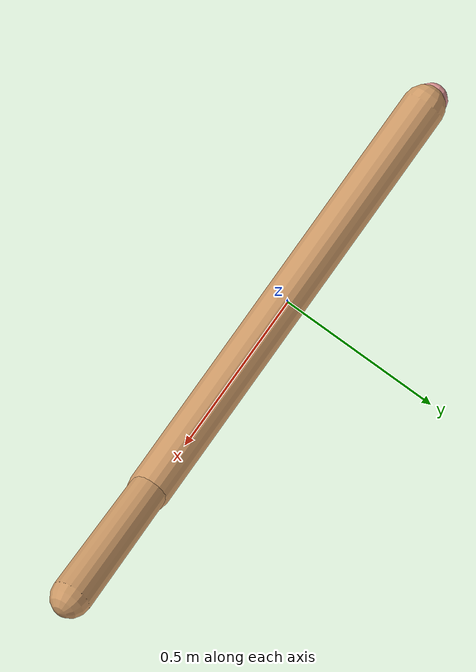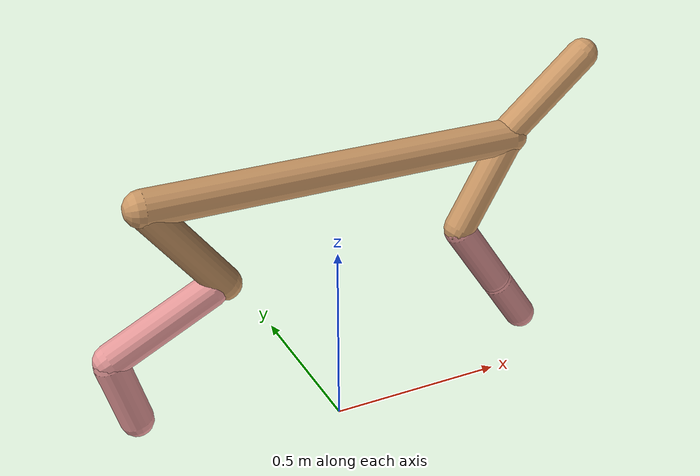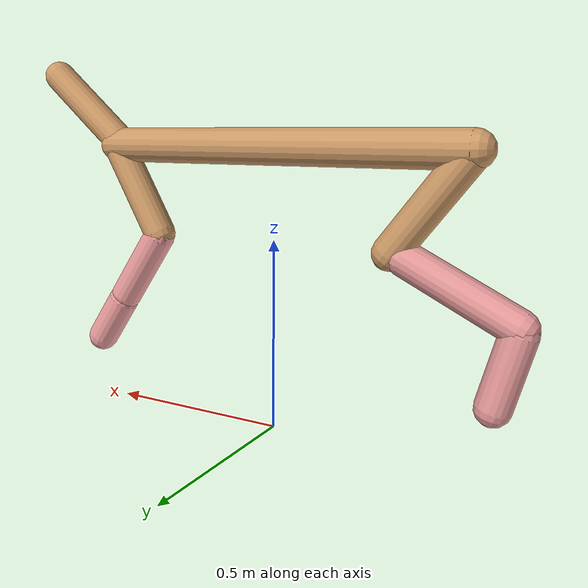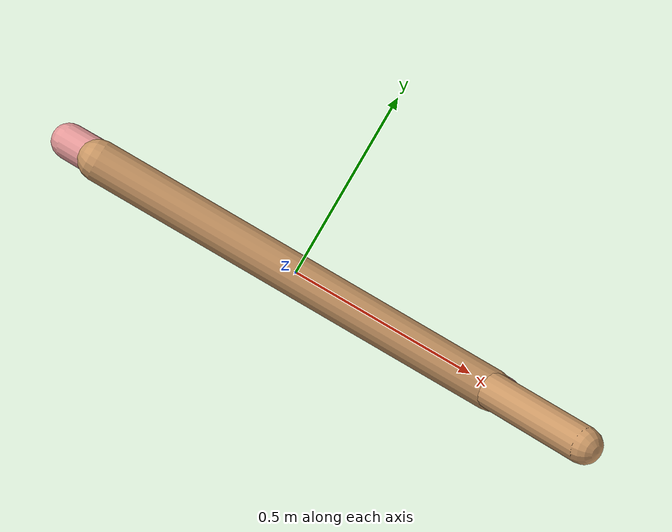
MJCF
<mujoco model="cheetah">
  <compiler angle="radian" coordinate="local" inertiafromgeom="true" settotalmass="14" />
  <default>
    <joint armature=".1" damping=".01" limited="true" solimplimit="0 .8 .03" solreflimit=".02 1" stiffness="8" />
    <geom conaffinity="0" condim="3" contype="1" friction="0.8 .1 .1" rgba="0.8 0.6 .4 1" solimp="0.0 0.8 0.01" solref="0.02 1" />
    <motor ctrllimited="true" ctrlrange="-1 1" />
  </default>
  <size nstack="300000" nuser_geom="1" />
  <option gravity="0 0 -9.81" timestep="0.01" />
  <worldbody>
    <body name="torso" pos="0.0 0.0 0.7378896103501977">
      <joint armature="0" axis="1 0 0" damping="0" limited="false" name="ignorex" pos="0 0 0" stiffness="0" type="slide" />
      <joint armature="0" axis="0 0 1" damping="0" limited="false" name="ignorez" pos="0 0 0" stiffness="0" type="slide" />
      <joint armature="0" axis="0 1 0" damping="0" limited="false" name="ignorey" pos="0 0 0" stiffness="0" type="hinge" />
      <geom fromto="-0.5 0.0 0.0 0.5067635413426524 0.0 0.0" name="torso" size="0.047739500274903535" type="capsule" />
      <geom axisangle="0 1 0 .87" name="head" pos="0.6067635413426523 0.0 0.1" size="0.042388676644780424 0.15" type="capsule" />

      <body name="bthigh" pos="-.5 0 0">
        <joint axis="0 1 0" damping="6" name="bthigh" pos="0 0 0" range="-.52 1.05" stiffness="240" type="hinge" />
        <geom axisangle="0 1 0 -3.8" name="bthigh" pos="0.10029410756766918 0.0 -0.13038233983796993" size="0.043904335114051986 0.14548237227642055" type="capsule" />
        <body name="bshin" pos="0.16058821513533836 0.0 -0.25076467967593985">
          <joint axis="0 1 0" damping="4.5" name="bshin" pos="0 0 0" range="-.785 .785" stiffness="180" type="hinge" />
          <geom axisangle="0 1 0 -2.03" name="bshin" pos="-0.1404463243588432 0.0 -0.0702231621794216" rgba="0.9 0.6 0.6 1" size="0.043904335114051986 0.1504990058031937" type="capsule" />
          <body name="bfoot" pos="-0.2808926487176864 0.0 -0.1404463243588432">
            <joint axis="0 1 0" damping="3" name="bfoot" pos="0 0 0" range="-.4 .785" stiffness="120" type="hinge" />
            <geom axisangle="0 1 0 -.27" name="bfoot" pos="0.03009239642668118 0.0 -0.09729874844626916" rgba="0.9 0.6 0.6 1" size="0.043904335114051986 0.09431271030333471" type="capsule" />
            <inertial mass="10" />
          </body>
        </body>
      </body>
      <body name="fthigh" pos="0.5067635413426523 0.0 0.0">
        <joint axis="0 1 0" damping="4.5" name="fthigh" pos="0 0 0" range="-1.5 0.8" stiffness="180" type="hinge" />
        <geom axisangle="0 1 0 .52" name="fthigh" pos="-0.07265603181754568 0.0 -0.12455319740150687" size="0.04318380473566786 0.13827125332277856" type="capsule" />
        <body name="fshin" pos="-0.14531206363509136 0.0 -0.24910639480301375">
          <joint axis="0 1 0" damping="3" name="fshin" pos="0 0 0" range="-1.2 1.1" stiffness="120" type="hinge" />
          <geom axisangle="0 1 0 -.6" name="fshin" pos="0.06745973320981352 0.0 -0.09340578444435718" rgba="0.9 0.6 0.6 1" size="0.04318380473566786 0.11020114926477087" type="capsule" />
          <body name="ffoot" pos="0.13491946641962704 0.0 -0.18681156888871436">
            <joint axis="0 1 0" damping="1.5" name="ffoot" pos="0 0 0" range="-3.1 -0.3" stiffness="60" type="hinge" />
            <geom axisangle="0 1 0 -.6" name="ffoot" pos="0.04650024750001527 0.0 -0.0723337183333571" rgba="0.9 0.6 0.6 1" size="0.04318380473566786 0.07277434385409398" type="capsule" />
            <inertial mass="10" />
          </body>
        </body>
      </body>
    </body>
  </worldbody>
  <actuator>
    <motor gear="120" joint="bthigh" name="bthigh" />
    <motor gear="90" joint="bshin" name="bshin" />
    <motor gear="60" joint="bfoot" name="bfoot" />
    <motor gear="120" joint="fthigh" name="fthigh" />
    <motor gear="60" joint="fshin" name="fshin" />
    <motor gear="30" joint="ffoot" name="ffoot" />
  </actuator>
</mujoco>
